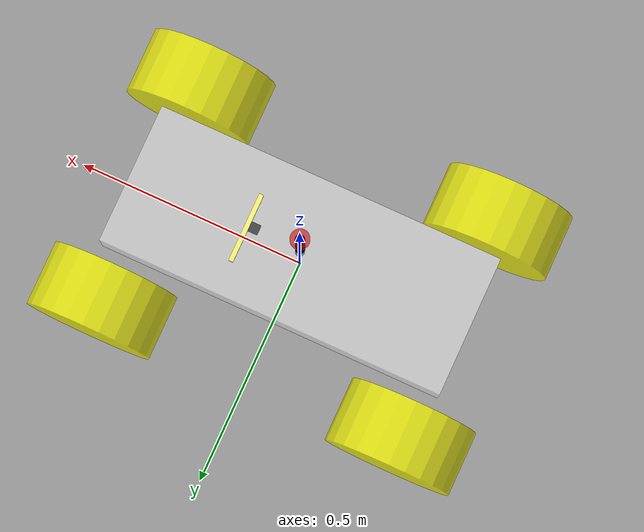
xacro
<?xml version="1.0"?>
<robot xmlns:xacro="http://www.ros.org/wiki/xacro" name = "robot">
<xacro:arg name="robot_name" default="robot1"/>
<xacro:include filename="$(find ackermann)/urdf/sensor/imu.urdf.xacro"/>
<xacro:include filename="$(find ackermann)/urdf/sensor/laser.urdf.xacro"/>
<xacro:include filename="$(find ackermann)/urdf/base.urdf.xacro"/>
<xacro:include filename="$(find ackermann)/urdf/acuator/front_wheel.urdf.xacro"/>
<xacro:include filename="$(find ackermann)/urdf/acuator/rear_wheel.urdf.xacro"/>

<xacro:include filename="$(find ackermann)/urdf/plugins/gazebo_control_plugin.xacro"/>
<xacro:include filename="$(find ackermann)/urdf/plugins/gazebo_sensor_plugin.xacro"/>

<xacro:base_link robot_name = "$(arg robot_name)" length = "0.75" width = "0.3" height = "0.1" wheel_radius = "0.14"/>
<xacro:imu_link robot_name = "$(arg robot_name)" xyz="0.1 0.0 0.051"/>
<xacro:laser_link robot_name = "$(arg robot_name)" xyz="0.0 0.0 0.11"/>
<xacro:rear_wheel_link robot_name = "$(arg robot_name)" rear_wheel_name = "rear_left_wheel" wheel_radius = "0.14" xyz="-0.34058 0.24619 -0.1535"/>
<xacro:rear_wheel_link robot_name = "$(arg robot_name)" rear_wheel_name = "rear_right_wheel" wheel_radius = "0.14" xyz="-0.34058 -0.24619 -0.1535"/>
<xacro:front_wheel_link robot_name = "$(arg robot_name)" front_wheel_name = "front_left_wheel" wheel_radius = "0.14" xyz="0.34058 0.24619 -0.1535"/>
<xacro:front_wheel_link robot_name = "$(arg robot_name)" front_wheel_name = "front_right_wheel" wheel_radius = "0.14" xyz="0.34058 -0.24619 -0.1535"/>

<xacro:gazebo_control_plugin robot_name = "$(arg robot_name)"/>
<xacro:gazebo_sensor_plugin robot_name = "$(arg robot_name)"/>
</robot>

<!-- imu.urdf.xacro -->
<robot xmlns:xacro="http://www.ros.org/wiki/xacro">
    <xacro:macro name="imu_link" params="robot_name xyz">
        <!--机器人IMU-->
        <link name="${robot_name}_imu_link">
            <!--外观描述-->
            <visual>
                <!--偏移和旋转-->
                <origin xyz="0.0 0.0 0.0" rpy="0.0 0.0 0.0"/>
                <!--几何形状-->
                <geometry>
                    <!--正方体, 单位m-->
                    <box size="0.02 0.02 0.02"/>
                </geometry>
                <!--材质-->
                <material name="black">
                    <!--颜色RGBA格式-->
                    <color rgba="0 0 0 0.5"/>
                </material>
            </visual>

            <collision>
                <!--偏移和旋转-->
                <origin xyz="0.0 0.0 0.0" rpy="0.0 0.0 0.0"/>
                <!--几何形状-->
                <geometry>
                    <!--正方体, 单位m-->
                    <box size="0.02 0.02 0.02"/>
                </geometry>
                <!--材质-->
                <material name="black">
                    <!--颜色RGBA格式-->
                    <color rgba="0 0 0 0.5"/>
                </material>
            </collision>

            <!--惯性属性-->
            <xacro:box_inertial m="0.05" w="0.02" h="0.02" d="0.02"/>
        </link>

        <!--机器人关节-->
        <joint name="${robot_name}_imu_joint" type="fixed">
            <!--父链接-->
            <parent link="${robot_name}_base_link"/>
            <!--子链接-->
            <child link="${robot_name}_imu_link"/>
            <!--偏移和旋转-->
            <origin xyz="${xyz}" rpy="0.0 0.0 0.0"/>
        </joint>

        <gazebo reference="${robot_name}_imu_link">
            <material>Gazebo/Black</material>
        </gazebo>
    </xacro:macro>
</robot>

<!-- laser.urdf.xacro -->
<robot xmlns:xacro="http://www.ros.org/wiki/xacro">
    <xacro:macro name="laser_link" params="robot_name xyz">
        <!--机器人laser-->
        <link name="${robot_name}_laser_cylinder_link">
            <!--外观描述-->
            <visual>
                <!--偏移和旋转-->
                <origin xyz="0.0 0.0 0.0" rpy="0.0 0.0 0.0"/>
                <!--几何形状-->
                <geometry>
                    <!--正方体, 单位m-->
                    <cylinder radius="0.01" length="0.2"/>
                </geometry>
                <!--材质-->
                <material name="black">
                    <!--颜色RGBA格式-->
                    <color rgba="0 0 0 1.0"/>
                </material>
            </visual>

            <collision>
                <!--偏移和旋转-->
                <origin xyz="0.0 0.0 0.0" rpy="0.0 0.0 0.0"/>
                <!--几何形状-->
                <geometry>
                    <!--正方体, 单位m-->
                    <cylinder radius="0.01" length="0.2"/>
                </geometry>
                <!--材质-->
                <material name="black">
                    <!--颜色RGBA格式-->
                    <color rgba="0 0 0 1.0"/>
                </material>
            </collision>

            <!--惯性属性-->
            <xacro:cylinder_inertial m="0.05" r="0.01" h="0.2"/>
        </link>

        <link name="${robot_name}_laser_link">
            <!--外观描述-->
            <visual>
                <!--偏移和旋转-->
                <origin xyz="0.0 0.0 0.0" rpy="0.0 0.0 0.0"/>
                <!--几何形状-->
                <geometry>
                    <!--正方体, 单位m-->
                    <cylinder radius="0.02" length="0.02"/>
                </geometry>
                <!--材质-->
                <material name="red">
                    <!--颜色RGBA格式-->
                    <color rgba="1 0 0 0.5"/>
                </material>
            </visual>

            <collision>
                <!--偏移和旋转-->
                <origin xyz="0.0 0.0 0.0" rpy="0.0 0.0 0.0"/>
                <!--几何形状-->
                <geometry>
                    <!--正方体, 单位m-->
                    <cylinder radius="0.02" length="0.02"/>
                </geometry>
                <!--材质-->
                <material name="red">
                    <!--颜色RGBA格式-->
                    <color rgba="1 0 0 0.5"/>
                </material>
            </collision>

            <!--惯性属性-->
            <xacro:cylinder_inertial m="0.05" r="0.02" h="0.02"/>
        </link>

        <!--机器人关节-->
        <joint name="${robot_name}_laser_joint" type="fixed">
            <!--父链接-->
            <parent link="${robot_name}_laser_cylinder_link"/>
            <!--子链接-->
            <child link="${robot_name}_laser_link"/>
            <!--偏移和旋转-->
            <origin xyz="0 0 0.1" rpy="0.0 0.0 0.0"/>
        </joint>

        <!--机器人关节-->
        <joint name="${robot_name}_laser_cylinder_joint" type="fixed">
            <!--父链接-->
            <parent link="${robot_name}_base_link"/>
            <!--子链接-->
            <child link="${robot_name}_laser_cylinder_link"/>
            <!--偏移和旋转-->
            <origin xyz="${xyz}" rpy="0.0 0.0 0.0"/>
        </joint>

        <gazebo reference="${robot_name}_laser_cylinder_link">
            <material>Gazebo/Black</material>
        </gazebo>
    </xacro:macro>
</robot>

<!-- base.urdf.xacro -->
<robot xmlns:xacro="http://www.ros.org/wiki/xacro" name="robot_name">
    <xacro:include filename="$(find ackermann)/urdf/common_inertial.xacro"/>
    <xacro:macro name="base_link" params="robot_name length width height wheel_radius">
        <!--机器人身体部分-->
        <link name="${robot_name}_base_link">
            <!--外观描述-->
            <visual>
                <!--偏移和旋转-->
                <origin xyz="0.0 0.0 0.0" rpy="0.0 0.0 0.0"/>
                <!--几何形状-->
                <geometry>
                    <!--长方体, 单位m-->
                    <box size="${length} ${width} ${height}"/>
                </geometry>
                <!--材质-->
                <material name="white">
                    <!--颜色RGBA格式-->
                    <color rgba="1 1 1 0.5"/>
                </material>
            </visual>

            <collision>
                <!--偏移和旋转-->
                <origin xyz="0.0 0.0 0.0" rpy="0.0 0.0 0.0"/>
                <!--几何形状-->
                <geometry>
                    <!--长方体, 单位m-->
                    <box size="${length} ${width} ${height}"/>
                </geometry>
                <!--材质-->
                <material name="white">
                    <!--颜色RGBA格式-->
                    <color rgba="1 1 1 0.5"/>
                </material>
            </collision>

            <!--惯性属性-->
            <xacro:box_inertial m="25.0" w="${width}" d="${length}" h="${height}"/>
        </link>

        <link name="${robot_name}_base_footprint" />

        <joint name="${robot_name}_base_joint" type="fixed">
            <!--父链接-->
            <parent link="${robot_name}_base_footprint"/>
            <!--子链接-->
            <child link="${robot_name}_base_link"/>
            <!--偏移和旋转-->
            <origin xyz="0.0 0.0 ${height / 2.0 + wheel_radius - 0.001}" rpy="0.0 0.0 0.0"/>
        </joint>

        <link name="${robot_name}_virtual_steer_link">
            <visual>
                <origin xyz="0.0 0.0 0.0" rpy="0.0 0.0 0.0" />
                <geometry>
                    <box size="0.01 0.15 0.01" />
                </geometry>
                <material name="">
                    <color rgba="1.0 1.0 0.0 1" />
                </material>
            </visual>
            <inertial>  <!-- Gazebo won't show this link without this inertial mass -->
                <origin xyz="0.0 0.0 0.0" rpy="0.0 0.0 0.0" />
                <mass value="0.001" />
                <inertia ixx="0.0" ixy="0.0" ixz="0.0" iyy="0.0" iyz="0.0" izz="0.0" />
            </inertial>
        </link>
        <joint name="${robot_name}_virtual_steering_wheel_joint" type="revolute">
            <origin xyz="0.12 0.0 0.0" rpy="0.0 0.0 0.0" />
            <parent link="${robot_name}_base_link" />
            <child link="${robot_name}_virtual_steer_link" />
            <axis xyz="-1 0 0" />
            <limit lower="-3.14159" upper="3.14159" effort="200" velocity="20" />
        </joint>

        <gazebo reference="${robot_name}_virtual_steer_link">
            <material>Gazebo/Yellow</material>
        </gazebo>

    </xacro:macro>
</robot>

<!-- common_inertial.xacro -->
<robot xmlns:xacro="http://www.ros.org/wiki/xacro">
    <xacro:macro name="box_inertial" params="m w h d">
        <inertial>
            <mass value="${m}"/>
            <inertia ixx="${(m / 12) * (h * h + d * d)}" ixy="0" ixz="0" iyy="${(m / 12) * (w * w + d * d)}" iyz="0" izz="${(m / 12) * (w * w + h * h)}"/>
        </inertial>
    </xacro:macro>

    <xacro:macro name="cylinder_inertial" params="m r h">
        <inertial>
            <mass value="${m}"/>
            <inertia ixx="${(m / 12) * (h * h + 3 * r * r)}" ixy="0" ixz="0" iyy="${(m / 12) * (3 * r * r + h * h)}" iyz="0" izz="${(m / 12) * (r * r)}"/>
        </inertial>
    </xacro:macro>

    <xacro:macro name="sphere_inertial" params="m r">
        <inertial>
            <mass value="${m}"/>
            <inertia ixx="${(2/5) * m * (r * r)}" ixy="0" ixz="0" iyy="${(2/5) * m * (r * r)}" iyz="0" izz="${(2/5) * m * (r * r)}"/>
        </inertial>
    </xacro:macro>
</robot>

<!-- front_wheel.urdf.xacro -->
<robot xmlns:xacro="http://www.ros.org/wiki/xacro">
    <xacro:include filename="$(find ackermann)/urdf/common_inertial.xacro"/>
    <xacro:macro name="front_wheel_link" params="robot_name front_wheel_name wheel_radius xyz">
        <!--机器人${front_wheel_name}-->
        <link name="${robot_name}_${front_wheel_name}_link">
            <!--外观描述-->
            <visual>
                <!--偏移和旋转-->
                <origin xyz="0.0 0.0 0.0" rpy="1.57079 0.0 0.0"/>
                <!--几何形状-->
                <geometry>
                    <!--正方体, 单位m-->
                    <cylinder radius = "${wheel_radius}" length = "0.14"/>
                </geometry>
                <!--材质-->
                <material name="yellow">
                    <!--颜色RGBA格式-->
                    <color rgba="1 1 0 0.8"/>
                </material>
            </visual>

            <collision>
                <!--偏移和旋转-->
                <origin xyz="0.0 0.0 0.0" rpy="1.57079 0.0 0.0"/>
                <!--几何形状-->
                <geometry>
                    <!--正方体, 单位m-->
                    <cylinder radius = "${wheel_radius}" length = "0.14"/>
                </geometry>
                <!--材质-->
                <material name="yellow">
                    <!--颜色RGBA格式-->
                    <color rgba="1 1 0 0.8"/>
                </material>
            </collision>

            <!--惯性属性-->
            <xacro:cylinder_inertial m="3.0" r="${wheel_radius}" h="0.14"/>
        </link>

        <link name="${robot_name}_${front_wheel_name}_steer_link">
            <xacro:cylinder_inertial m="0.01" r="${wheel_radius}" h="0.14"/>
        </link>

        <joint name="${robot_name}_${front_wheel_name}_steer_joint" type="revolute">
            <parent link="${robot_name}_base_link"/>
            <child link="${robot_name}_${front_wheel_name}_steer_link"/>
            <origin rpy="0 0 0" xyz="${xyz}"/>
            <axis xyz="0 0 1"/>
            <dynamics damping="0.5" />
            <limit
            lower="-0.72"
            upper="0.72"
            effort="75.0"
            velocity="5.0" />
        </joint>

        <!--机器人关节-->
        <joint name="${robot_name}_${front_wheel_name}_joint" type="continuous">
            <!--父链接-->
            <parent link="${robot_name}_${front_wheel_name}_steer_link"/>
            <!--子链接-->
            <child link="${robot_name}_${front_wheel_name}_link"/>
            <!--偏移和旋转-->
            <origin xyz="0.0 0.0 0.0" rpy="0.0 0.0 0.0"/>

            <axis xyz="0.0 1 0.0"/>
        </joint>

        <gazebo reference="${robot_name}_${front_wheel_name}_link">
            <material>Gazebo/Yellow</material>
            <mu1 value="150.0" />
            <mu2 value="10.0" />
            <kp value="1000000000.0" />
            <kd value="1.0" />
        </gazebo>
    </xacro:macro>
</robot>

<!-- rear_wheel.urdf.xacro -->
<robot xmlns:xacro="http://www.ros.org/wiki/xacro">
    <xacro:include filename="$(find ackermann)/urdf/common_inertial.xacro"/>
    <xacro:macro name="rear_wheel_link" params="robot_name rear_wheel_name wheel_radius xyz">
        <!--机器人${rear_wheel_name}-->
        <link name="${robot_name}_${rear_wheel_name}_link">
            <!--外观描述-->
            <visual>
                <!--偏移和旋转-->
                <origin xyz="0.0 0.0 0.0" rpy="1.57079 0.0 0.0"/>
                <!--几何形状-->
                <geometry>
                    <!--圆柱体, 单位m-->
                    <cylinder radius = "${wheel_radius}" length = "0.14"/>
                </geometry>
                <!--材质-->
                <material name="yellow">
                    <!--颜色RGBA格式-->
                    <color rgba="1 1 0 0.8"/>
                </material>
            </visual>

            <collision>
                <!--偏移和旋转-->
                <origin xyz="0.0 0.0 0.0" rpy="1.57079 0.0 0.0"/>
                <!--几何形状-->
                <geometry>
                    <!--圆柱体, 单位m-->
                    <cylinder radius = "${wheel_radius}" length = "0.14"/>
                </geometry>
                <!--材质-->
                <material name="yellow">
                    <!--颜色RGBA格式-->
                    <color rgba="1 1 0 0.8"/>
                </material>
            </collision>

            <!--惯性属性-->
            <xacro:cylinder_inertial m="3.0" r="${wheel_radius}" h="0.14"/>
        </link>

        <!--机器人关节-->
        <joint name="${robot_name}_${rear_wheel_name}_joint" type="continuous">
            <!--父链接-->
            <parent link="${robot_name}_base_link"/>
            <!--子链接-->
            <child link="${robot_name}_${rear_wheel_name}_link"/>
            <!--偏移和旋转-->
            <origin xyz="${xyz}" rpy="0.0 0.0 0.0"/>
            <dynamics friction="0.8" damping="0.5" />
            <limit lower="-3.14159" upper="3.14159" effort="200" velocity="-1" />

            <axis xyz="0.0 1 0.0"/>
        </joint>

        <gazebo reference="${robot_name}_${rear_wheel_name}_link">
            <material>Gazebo/Yellow</material>
            <mu1 value="150.0" />
            <mu2 value="10.0" />
            <kp value="1000000000.0" />
            <kd value="1.0" />
        </gazebo>
    </xacro:macro>
</robot>
